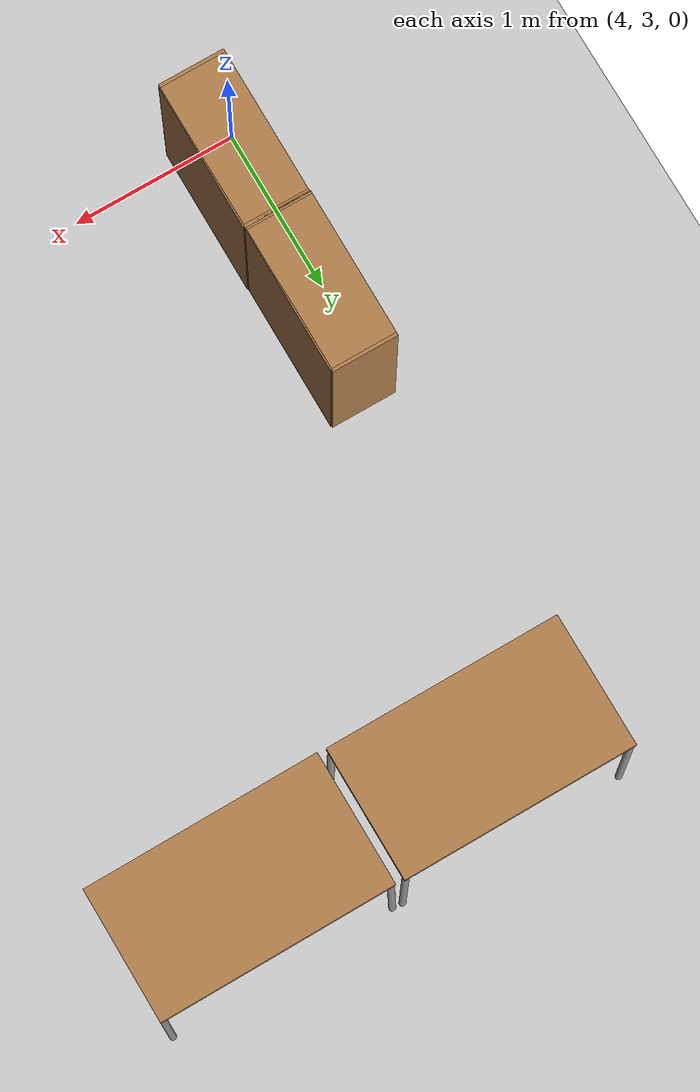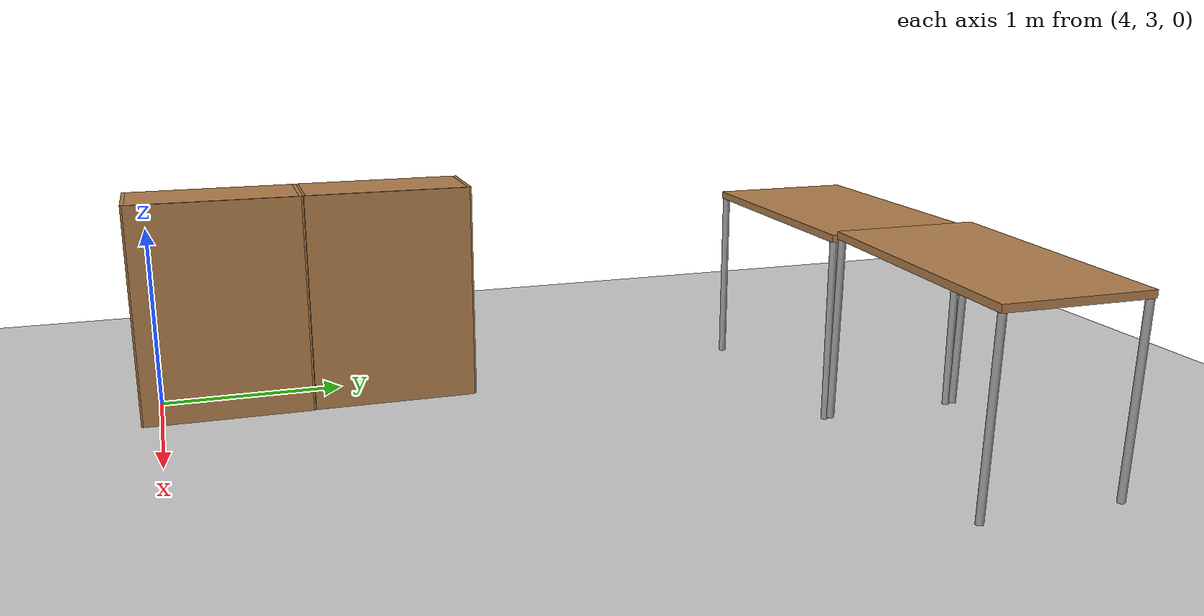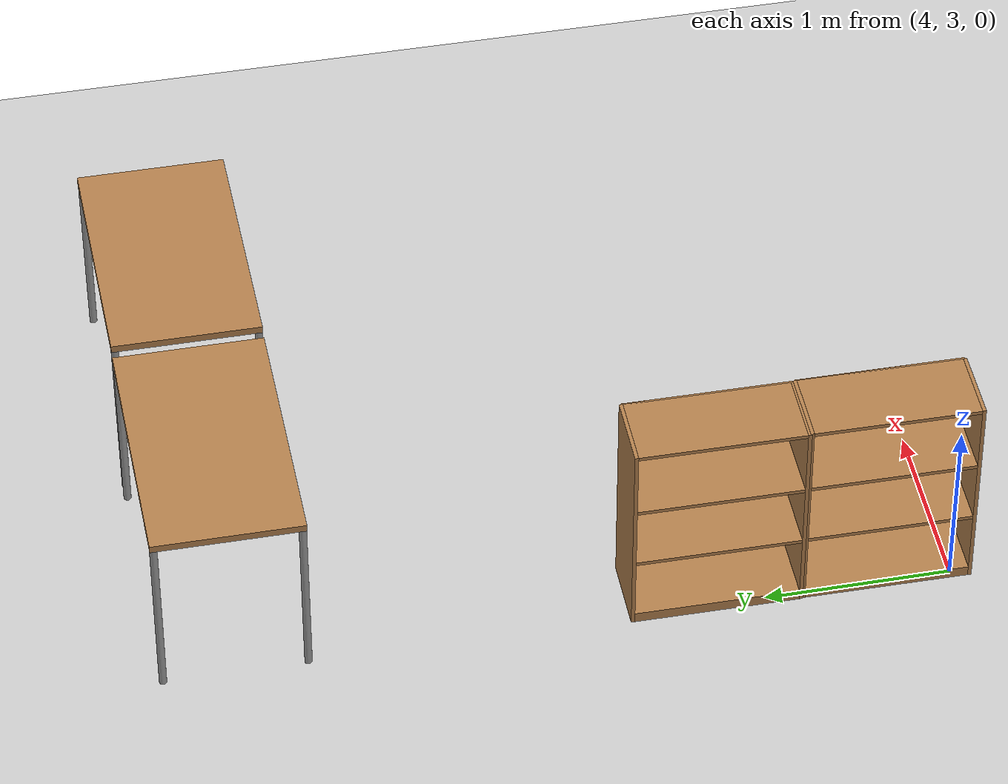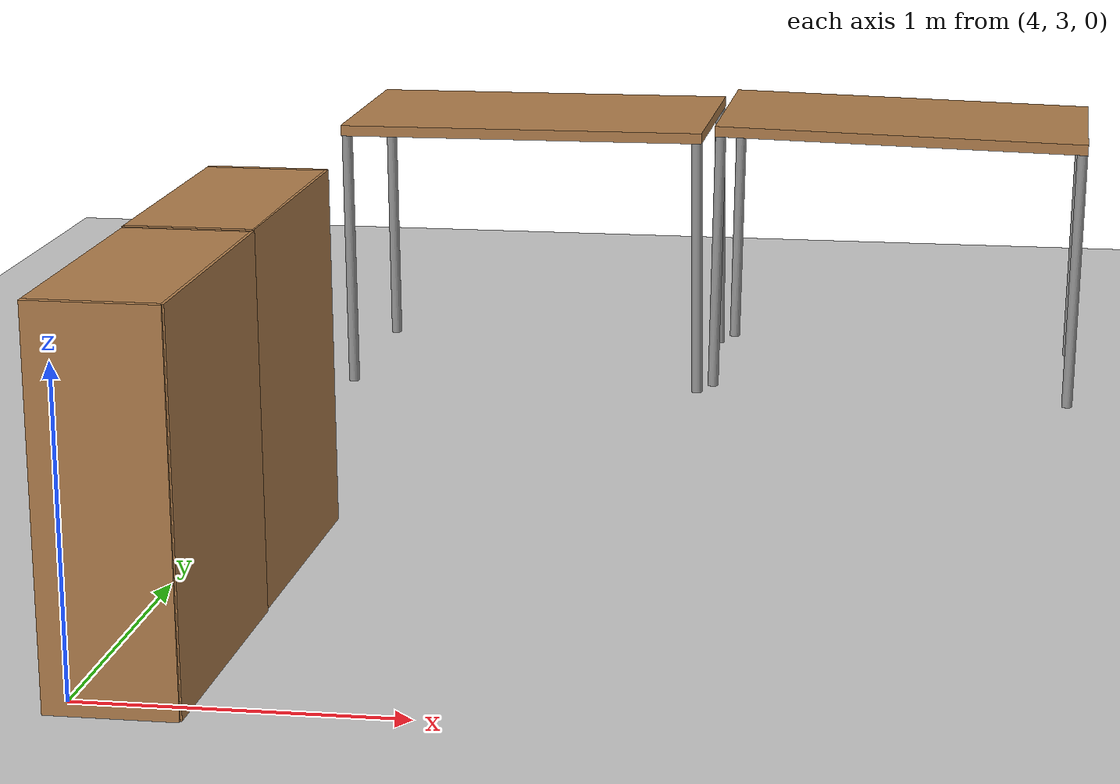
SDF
<sdf version="1.6">
 <world name="default">
  <model name="ground_plane">
   <static>1</static>
   <link name="link">
    <collision name="collision">
     <geometry><plane><normal>0 0 1</normal><size>100 100</size></plane></geometry>
     <surface><friction><ode><mu>100</mu><mu2>50</mu2></ode></friction></surface>
    </collision>
    <visual name="visual">
     <cast_shadows>0</cast_shadows>
     <geometry><plane><normal>0 0 1</normal><size>100 100</size></plane></geometry>
     <material>
      <script><uri>file://media/materials/scripts/gazebo.material</uri><name>Gazebo/Grey</name></script>
     </material>
    </visual>
   </link>
  </model>
  <model name="table">
   <static>0</static>
   <link name="link">
    <collision name="surface">
     <pose>0 0 1 0 -0 0</pose>
     <geometry><box><size>1.5 0.8 0.03</size></box></geometry>
     <surface><friction><ode><mu>0.6</mu><mu2>0.6</mu2></ode></friction></surface>
    </collision>
    <visual name="visual1">
     <pose>0 0 1 0 -0 0</pose>
     <geometry><box><size>1.4 0.8 0.04</size></box></geometry>
     <material>
      <script><uri>file://media/materials/scripts/gazebo.material</uri><name>Gazebo/Wood</name></script>
     </material>
    </visual>
    <collision name="front_left_leg">
     <pose>0.68 0.38 0.5 0 -0 0</pose>
     <geometry><cylinder><radius>0.02</radius><length>1</length></cylinder></geometry>
    </collision>
    <visual name="front_left_leg">
     <pose>0.68 0.38 0.5 0 -0 0</pose>
     <geometry><cylinder><radius>0.02</radius><length>1</length></cylinder></geometry>
     <material>
      <script><uri>file://media/materials/scripts/gazebo.material</uri><name>Gazebo/Grey</name></script>
     </material>
    </visual>
    <collision name="front_right_leg">
     <pose>0.68 -0.38 0.5 0 -0 0</pose>
     <geometry><cylinder><radius>0.02</radius><length>1</length></cylinder></geometry>
    </collision>
    <visual name="front_right_leg">
     <pose>0.68 -0.38 0.5 0 -0 0</pose>
     <geometry><cylinder><radius>0.02</radius><length>1</length></cylinder></geometry>
     <material>
      <script><uri>file://media/materials/scripts/gazebo.material</uri><name>Gazebo/Grey</name></script>
     </material>
    </visual>
    <collision name="back_right_leg">
     <pose>-0.68 -0.38 0.5 0 -0 0</pose>
     <geometry><cylinder><radius>0.02</radius><length>1</length></cylinder></geometry>
    </collision>
    <visual name="back_right_leg">
     <pose>-0.68 -0.38 0.5 0 -0 0</pose>
     <geometry><cylinder><radius>0.02</radius><length>1</length></cylinder></geometry>
     <material>
      <script><uri>file://media/materials/scripts/gazebo.material</uri><name>Gazebo/Grey</name></script>
     </material>
    </visual>
    <collision name="back_left_leg">
     <pose>-0.68 0.38 0.5 0 -0 0</pose>
     <geometry><cylinder><radius>0.02</radius><length>1</length></cylinder></geometry>
    </collision>
    <visual name="back_left_leg">
     <pose>-0.68 0.38 0.5 0 -0 0</pose>
     <geometry><cylinder><radius>0.02</radius><length>1</length></cylinder></geometry>
     <material>
      <script><uri>file://media/materials/scripts/gazebo.material</uri><name>Gazebo/Grey</name></script>
     </material>
    </visual>
    <inertial>
     <inertia><ixx>1</ixx><ixy>0</ixy><ixz>0</ixz><iyy>1</iyy><iyz>0</iyz><izz>1</izz></inertia>
     <mass>1</mass>
    </inertial>
   </link>
   <pose>4.69297 6.80411 0.002296 0 -0.00328 -0.000198</pose>
  </model>
  <model name="table_clone">
   <static>0</static>
   <link name="link">
    <collision name="surface">
     <pose>0 0 1 0 -0 0</pose>
     <geometry><box><size>1.5 0.8 0.03</size></box></geometry>
     <surface><friction><ode><mu>0.6</mu><mu2>0.6</mu2></ode></friction></surface>
    </collision>
    <visual name="visual1">
     <pose>0 0 1 0 -0 0</pose>
     <geometry><box><size>1.4 0.8 0.04</size></box></geometry>
     <material>
      <script><uri>file://media/materials/scripts/gazebo.material</uri><name>Gazebo/Wood</name></script>
     </material>
    </visual>
    <collision name="front_left_leg">
     <pose>0.68 0.38 0.5 0 -0 0</pose>
     <geometry><cylinder><radius>0.02</radius><length>1</length></cylinder></geometry>
    </collision>
    <visual name="front_left_leg">
     <pose>0.68 0.38 0.5 0 -0 0</pose>
     <geometry><cylinder><radius>0.02</radius><length>1</length></cylinder></geometry>
     <material>
      <script><uri>file://media/materials/scripts/gazebo.material</uri><name>Gazebo/Grey</name></script>
     </material>
    </visual>
    <collision name="front_right_leg">
     <pose>0.68 -0.38 0.5 0 -0 0</pose>
     <geometry><cylinder><radius>0.02</radius><length>1</length></cylinder></geometry>
    </collision>
    <visual name="front_right_leg">
     <pose>0.68 -0.38 0.5 0 -0 0</pose>
     <geometry><cylinder><radius>0.02</radius><length>1</length></cylinder></geometry>
     <material>
      <script><uri>file://media/materials/scripts/gazebo.material</uri><name>Gazebo/Grey</name></script>
     </material>
    </visual>
    <collision name="back_right_leg">
     <pose>-0.68 -0.38 0.5 0 -0 0</pose>
     <geometry><cylinder><radius>0.02</radius><length>1</length></cylinder></geometry>
    </collision>
    <visual name="back_right_leg">
     <pose>-0.68 -0.38 0.5 0 -0 0</pose>
     <geometry><cylinder><radius>0.02</radius><length>1</length></cylinder></geometry>
     <material>
      <script><uri>file://media/materials/scripts/gazebo.material</uri><name>Gazebo/Grey</name></script>
     </material>
    </visual>
    <collision name="back_left_leg">
     <pose>-0.68 0.38 0.5 0 -0 0</pose>
     <geometry><cylinder><radius>0.02</radius><length>1</length></cylinder></geometry>
    </collision>
    <visual name="back_left_leg">
     <pose>-0.68 0.38 0.5 0 -0 0</pose>
     <geometry><cylinder><radius>0.02</radius><length>1</length></cylinder></geometry>
     <material>
      <script><uri>file://media/materials/scripts/gazebo.material</uri><name>Gazebo/Grey</name></script>
     </material>
    </visual>
    <inertial>
     <inertia><ixx>1</ixx><ixy>0</ixy><ixz>0</ixz><iyy>1</iyy><iyz>0</iyz><izz>1</izz></inertia>
     <mass>1</mass>
    </inertial>
   </link>
   <pose>6.11553 6.80247 0.017577 -1e-06 0.025113 -0.0002</pose>
  </model>
  <model name="bookshelf_clone_2_clone_0">
   <static>1</static>
   <link name="link">
    <inertial><mass>1</mass></inertial>
    <collision name="back">
     <pose>0 0.005 0.6 0 -0 0</pose>
     <geometry><box><size>0.9 0.01 1.2</size></box></geometry>
    </collision>
    <visual name="visual1">
     <pose>0 0.005 0.6 0 -0 0</pose>
     <geometry><box><size>0.9 0.01 1.2</size></box></geometry>
     <material>
      <script><uri>file://media/materials/scripts/gazebo.material</uri><name>Gazebo/Wood</name></script>
     </material>
    </visual>
    <collision name="left_side">
     <pose>0.45 -0.195 0.6 0 -0 0</pose>
     <geometry><box><size>0.02 0.4 1.2</size></box></geometry>
    </collision>
    <visual name="visual2">
     <pose>0.45 -0.195 0.6 0 -0 0</pose>
     <geometry><box><size>0.02 0.4 1.2</size></box></geometry>
     <material>
      <script><uri>file://media/materials/scripts/gazebo.material</uri><name>Gazebo/Wood</name></script>
     </material>
    </visual>
    <collision name="right_side">
     <pose>-0.45 -0.195 0.6 0 -0 0</pose>
     <geometry><box><size>0.02 0.4 1.2</size></box></geometry>
    </collision>
    <visual name="visual3">
     <pose>-0.45 -0.195 0.6 0 -0 0</pose>
     <geometry><box><size>0.02 0.4 1.2</size></box></geometry>
     <material>
      <script><uri>file://media/materials/scripts/gazebo.material</uri><name>Gazebo/Wood</name></script>
     </material>
    </visual>
    <collision name="bottom">
     <pose>0 -0.195 0.03 0 -0 0</pose>
     <geometry><box><size>0.88 0.4 0.06</size></box></geometry>
    </collision>
    <visual name="visual4">
     <pose>0 -0.195 0.03 0 -0 0</pose>
     <geometry><box><size>0.88 0.4 0.06</size></box></geometry>
     <material>
      <script><uri>file://media/materials/scripts/gazebo.material</uri><name>Gazebo/Wood</name></script>
     </material>
    </visual>
    <collision name="top">
     <pose>0 -0.195 1.19 0 -0 0</pose>
     <geometry><box><size>0.88 0.4 0.02</size></box></geometry>
    </collision>
    <visual name="visual5">
     <pose>0 -0.195 1.19 0 -0 0</pose>
     <geometry><box><size>0.88 0.4 0.02</size></box></geometry>
     <material>
      <script><uri>file://media/materials/scripts/gazebo.material</uri><name>Gazebo/Wood</name></script>
     </material>
    </visual>
    <collision name="low_shelf">
     <pose>0 -0.195 0.43 0 -0 0</pose>
     <geometry><box><size>0.88 0.4 0.02</size></box></geometry>
    </collision>
    <visual name="visual6">
     <pose>0 -0.195 0.43 0 -0 0</pose>
     <geometry><box><size>0.88 0.4 0.02</size></box></geometry>
     <material>
      <script><uri>file://media/materials/scripts/gazebo.material</uri><name>Gazebo/Wood</name></script>
     </material>
    </visual>
    <collision name="high_shelf">
     <pose>0 -0.195 0.8 0 -0 0</pose>
     <geometry><box><size>0.88 0.4 0.02</size></box></geometry>
    </collision>
    <visual name="visual7">
     <pose>0 -0.195 0.8 0 -0 0</pose>
     <geometry><box><size>0.88 0.4 0.02</size></box></geometry>
     <material>
      <script><uri>file://media/materials/scripts/gazebo.material</uri><name>Gazebo/Wood</name></script>
     </material>
    </visual>
   </link>
   <pose>4.35426 4.26537 0 0 0 -1.57535</pose>
  </model>
  <model name="bookshelf_clone_2_clone_1">
   <static>1</static>
   <link name="link">
    <inertial><mass>1</mass></inertial>
    <collision name="back">
     <pose>0 0.005 0.6 0 -0 0</pose>
     <geometry><box><size>0.9 0.01 1.2</size></box></geometry>
    </collision>
    <visual name="visual1">
     <pose>0 0.005 0.6 0 -0 0</pose>
     <geometry><box><size>0.9 0.01 1.2</size></box></geometry>
     <material>
      <script><uri>file://media/materials/scripts/gazebo.material</uri><name>Gazebo/Wood</name></script>
     </material>
    </visual>
    <collision name="left_side">
     <pose>0.45 -0.195 0.6 0 -0 0</pose>
     <geometry><box><size>0.02 0.4 1.2</size></box></geometry>
    </collision>
    <visual name="visual2">
     <pose>0.45 -0.195 0.6 0 -0 0</pose>
     <geometry><box><size>0.02 0.4 1.2</size></box></geometry>
     <material>
      <script><uri>file://media/materials/scripts/gazebo.material</uri><name>Gazebo/Wood</name></script>
     </material>
    </visual>
    <collision name="right_side">
     <pose>-0.45 -0.195 0.6 0 -0 0</pose>
     <geometry><box><size>0.02 0.4 1.2</size></box></geometry>
    </collision>
    <visual name="visual3">
     <pose>-0.45 -0.195 0.6 0 -0 0</pose>
     <geometry><box><size>0.02 0.4 1.2</size></box></geometry>
     <material>
      <script><uri>file://media/materials/scripts/gazebo.material</uri><name>Gazebo/Wood</name></script>
     </material>
    </visual>
    <collision name="bottom">
     <pose>0 -0.195 0.03 0 -0 0</pose>
     <geometry><box><size>0.88 0.4 0.06</size></box></geometry>
    </collision>
    <visual name="visual4">
     <pose>0 -0.195 0.03 0 -0 0</pose>
     <geometry><box><size>0.88 0.4 0.06</size></box></geometry>
     <material>
      <script><uri>file://media/materials/scripts/gazebo.material</uri><name>Gazebo/Wood</name></script>
     </material>
    </visual>
    <collision name="top">
     <pose>0 -0.195 1.19 0 -0 0</pose>
     <geometry><box><size>0.88 0.4 0.02</size></box></geometry>
    </collision>
    <visual name="visual5">
     <pose>0 -0.195 1.19 0 -0 0</pose>
     <geometry><box><size>0.88 0.4 0.02</size></box></geometry>
     <material>
      <script><uri>file://media/materials/scripts/gazebo.material</uri><name>Gazebo/Wood</name></script>
     </material>
    </visual>
    <collision name="low_shelf">
     <pose>0 -0.195 0.43 0 -0 0</pose>
     <geometry><box><size>0.88 0.4 0.02</size></box></geometry>
    </collision>
    <visual name="visual6">
     <pose>0 -0.195 0.43 0 -0 0</pose>
     <geometry><box><size>0.88 0.4 0.02</size></box></geometry>
     <material>
      <script><uri>file://media/materials/scripts/gazebo.material</uri><name>Gazebo/Wood</name></script>
     </material>
    </visual>
    <collision name="high_shelf">
     <pose>0 -0.195 0.8 0 -0 0</pose>
     <geometry><box><size>0.88 0.4 0.02</size></box></geometry>
    </collision>
    <visual name="visual7">
     <pose>0 -0.195 0.8 0 -0 0</pose>
     <geometry><box><size>0.88 0.4 0.02</size></box></geometry>
     <material>
      <script><uri>file://media/materials/scripts/gazebo.material</uri><name>Gazebo/Wood</name></script>
     </material>
    </visual>
   </link>
   <pose>4.3553 3.35235 0 0 0 -1.57535</pose>
  </model>
 </world>
</sdf>
